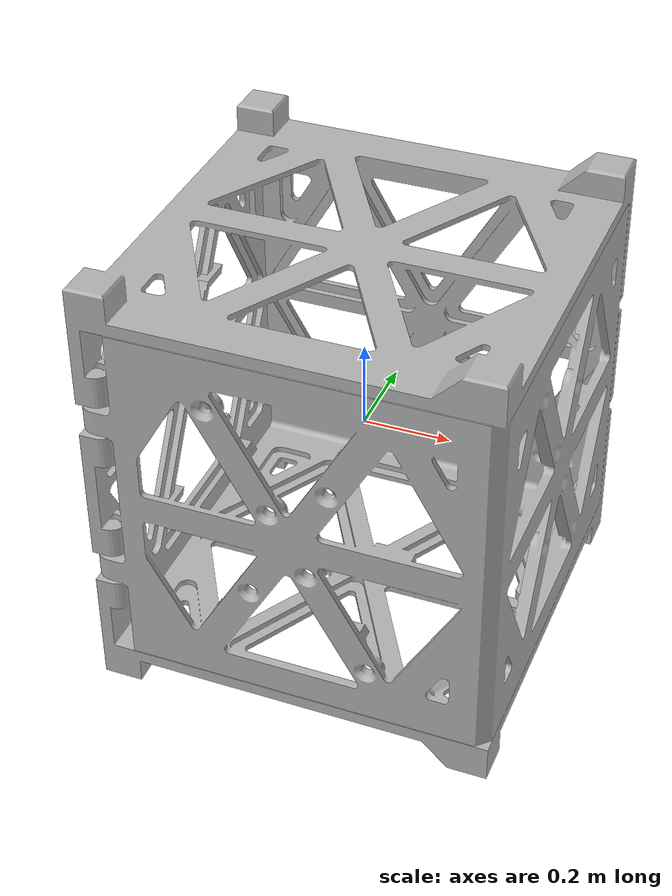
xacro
<?xml version="1.0" ?>
<robot name="cubesat" xmlns:xacro="http://www.ros.org/wiki/xacro">

<xacro:include filename="$(find cubesat_description)/urdf/materials.xacro" />
<xacro:include filename="$(find cubesat_description)/urdf/cubesat.trans" />
<xacro:include filename="$(find cubesat_description)/urdf/cubesat.gazebo" />
<link name="base_link">
  <inertial>
    <origin xyz="0.000500648953679641 -0.00018140463958650211 -1.898172859337299e-05" rpy="0 0 0"/>
    <mass value="30"/>
    <inertia ixx="1.66667" iyy="1.66667" izz="1.66667" ixy="-8e-06" iyz="0.0" ixz="1e-06"/>
  </inertial>
  <visual>
    <origin xyz="0 0 0" rpy="0 0 0"/>
    <geometry>
      <mesh filename="package://cubesat_description/meshes/base_link.stl" scale="0.009 0.009 0.009"/>
    </geometry>
    <material name="silver"/>
  </visual>
  <collision>
    <origin xyz="0 0 0" rpy="0 0 0"/>
    <geometry>
      <mesh filename="package://cubesat_description/meshes/base_link.stl" scale="0.009 0.009 0.009"/>
    </geometry>
  </collision>
</link>

</robot>

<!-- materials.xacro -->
<robot name="cubesat" xmlns:xacro="http://www.ros.org/wiki/xacro" >

<material name="silver">
  <color rgba="0.700 0.700 0.700 1.000"/>
</material>

</robot>

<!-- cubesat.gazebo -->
<robot name="cubesat" xmlns:xacro="http://www.ros.org/wiki/xacro" >

<xacro:property name="body_color" value="Gazebo/Silver" />

<gazebo reference="base_link">
  <material>${body_color}</material>
  <mu1>0.2</mu1>
  <mu2>0.2</mu2>
  <selfCollide>true</selfCollide>
  <dynamics damping="0.0" friction="100.0"/>
</gazebo>

</robot>
